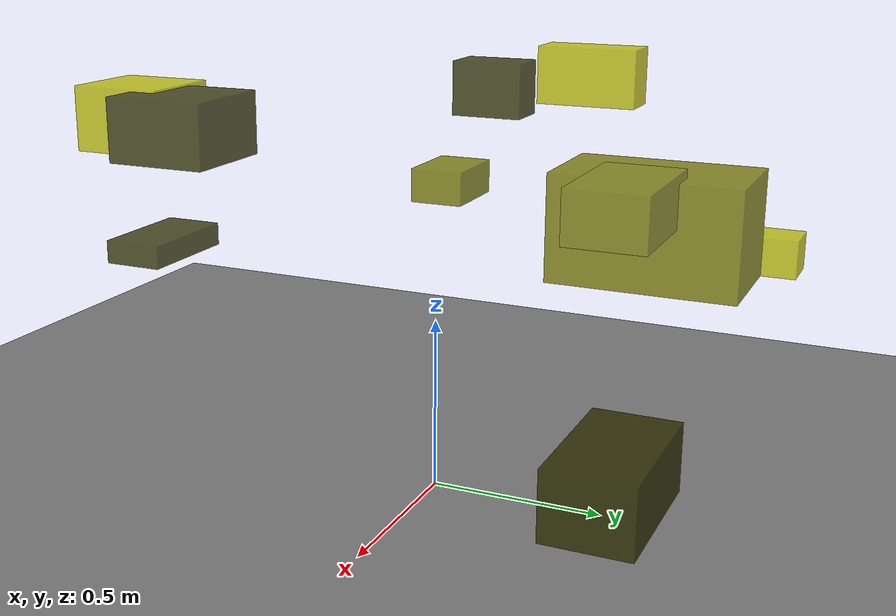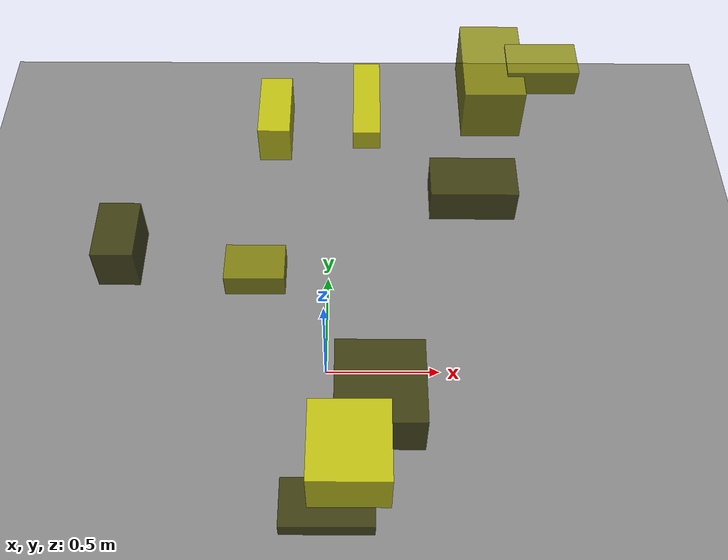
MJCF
<?xml version="1.0"?>
<mujoco model="obstacle_scene">
  <compiler angle="radian" coordinate="local"/>
  <option timestep="0.001" gravity="0 0 -9.81"/>

  <asset>
    <material name="obstacle_mat" rgba="0.8 0.8 0.0 0.8"/>
    <material name="ground_mat" rgba="0.5 0.5 0.5 1"/>
  </asset>

  <worldbody>
    <!-- Ground plane -->
    <geom name="ground" type="plane" size="3 3 0.1" material="ground_mat"/>

    <!-- Obstacles -->
    <body name="obstacle_0" pos="-0.697184 -0.107589 1.064653">
      <geom name="obs_0" type="box" size="0.072034 0.113293 0.086475" rgba="0.2 0.2 0.0 0.8"/>
    </body>
    <body name="obstacle_1" pos="0.860354 0.767425 1.084289">
      <geom name="obs_1" type="box" size="0.138370 0.083503 0.055517" rgba="0.5 0.5 0.0 0.8"/>
    </body>
    <body name="obstacle_2" pos="0.170432 0.800166 0.846662">
      <geom name="obs_2" type="box" size="0.055218 0.203345 0.045274" rgba="0.8 0.8 0.0 0.8"/>
    </body>
    <body name="obstacle_3" pos="0.034760 -0.889840 0.639302">
      <geom name="obs_3" type="box" size="0.162999 0.088328 0.034214" rgba="0.2 0.2 0.0 0.8"/>
    </body>
    <body name="obstacle_4" pos="-0.241496 -0.061141 0.852812">
      <geom name="obs_4" type="box" size="0.110291 0.076578 0.048661" rgba="0.5 0.5 0.0 0.8"/>
    </body>
    <body name="obstacle_5" pos="-0.166030 0.377477 1.192356">
      <geom name="obs_5" type="box" size="0.057082 0.133800 0.076519" rgba="0.8 0.8 0.0 0.8"/>
    </body>
    <body name="obstacle_6" pos="0.649543 0.709165 0.416818">
      <geom name="obs_6" type="box" size="0.191227 0.107496 0.085560" rgba="0.2 0.2 0.0 0.8"/>
    </body>
    <body name="obstacle_7" pos="0.668166 0.779825 1.006043">
      <geom name="obs_7" type="box" size="0.117253 0.197107 0.114229" rgba="0.5 0.5 0.0 0.8"/>
    </body>
    <body name="obstacle_8" pos="0.110824 -0.887645 1.039869">
      <geom name="obs_8" type="box" size="0.130315 0.136232 0.094075" rgba="0.8 0.8 0.0 0.8"/>
    </body>
    <body name="obstacle_9" pos="0.206873 -0.682334 1.036685">
      <geom name="obs_9" type="box" size="0.145339 0.148240 0.091298" rgba="0.2 0.2 0.0 0.8"/>
    </body>
  </worldbody>
</mujoco>
